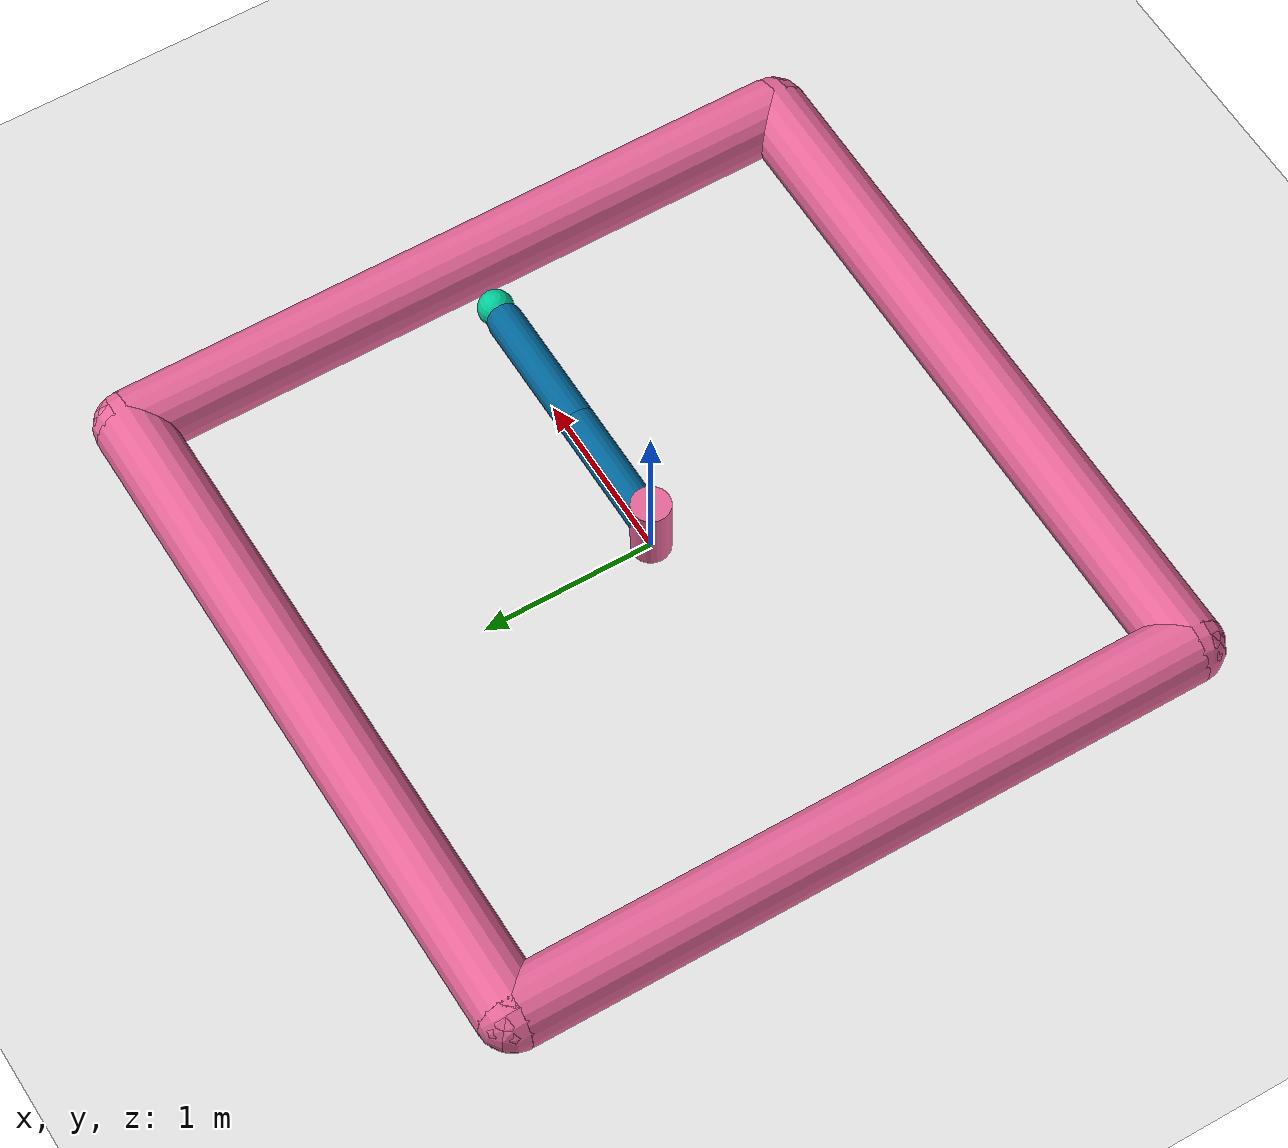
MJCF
<mujoco model="reacher">
    <compiler angle="radian" inertiafromgeom="auto"/>
    <default>
        <joint armature="0.01" damping="0.1" limited="true" frictionloss="0.5"/>
        <geom friction="0.1 0.1 0.1" rgba="0.7 0.7 0 1" condim="3" density="10"/>
    </default>
    <option gravity="0 0 -9.81" integrator="RK4" timestep="0.05" noslip_iterations="5"/>

    <worldbody>
        <!-- Arena -->
        <geom type="plane" name="ground" pos="0 0 0" size="5 5 10" rgba="0.9 0.9 0.9 1"/>
        <geom type="capsule" fromto="-2 -2 .1 2 -2 .1" size=".2" rgba="0.9 0.4 0.6 1"/>
        <geom type="capsule" fromto="2 -2 .1 2 2 .1" size=".2" rgba="0.9 0.4 0.6 1"/>
        <geom type="capsule" fromto="-2 2 .1 2 2 .1" size=".2" rgba="0.9 0.4 0.6 1"/>
        <geom type="capsule" fromto="-2 -2 .1 -2 2 .1" size=".2" rgba="0.9 0.4 0.6 1"/>

        <!-- Arm -->
        <geom type="cylinder" fromto="0 0 0 0 0 0.4" size=".11" rgba="0.9 0.4 0.6 1"/>
        <body name="body0" pos="0 0 .2">
            <geom type="capsule" fromto="0 0 0 0.75 0 0" size=".1" rgba="0.0 0.4 0.6 1"/>
            <joint type="hinge" axis="0 0 1" name="joint0" limited="false" pos="0 0 0"/>
            <body name="body1" pos="0.75 0 0">
                <geom type="capsule" fromto="0 0 0 0.75 0 0" size=".1" rgba="0.0 0.4 0.6 1"/>
                <joint type="hinge" axis="0 0 1" name="joint1" limited="true" range="-3.0 3.0" pos="0 0 0"/>
                <body name="fingertip" pos="0.85 0 0">
                    <geom type="sphere" name="fingertip" size="0.1" rgba="0.0 0.8 0.6 1"/>
                </body>
            </body>
        </body>

        <!-- Target: safe within reach -->
        <body name="target" pos="1.2 0.0 0.2">
            <geom type="sphere" size="0.1" rgba="0 0.9 0 1" contype="1" conaffinity="1"/>
        </body>

    </worldbody>

    <actuator>
        <motor joint="joint0" gear="1.0" ctrllimited="true" ctrlrange="-1.0 1.0"/>
        <motor joint="joint1" gear="1.0" ctrllimited="true" ctrlrange="-1.0 1.0"/>
    </actuator>
</mujoco>
